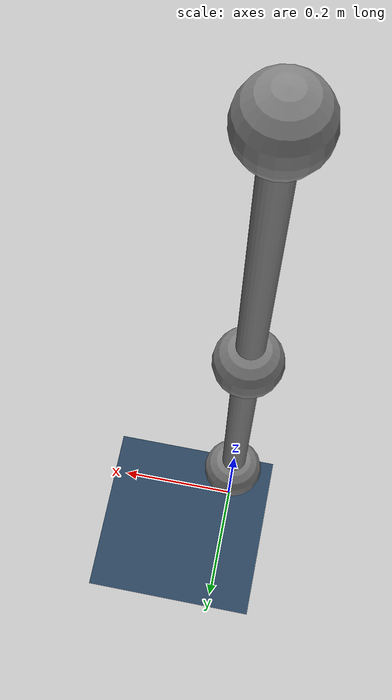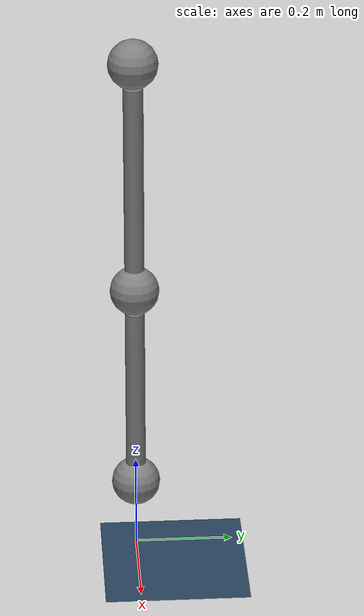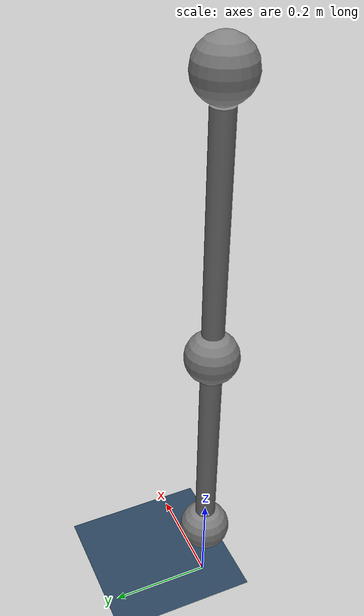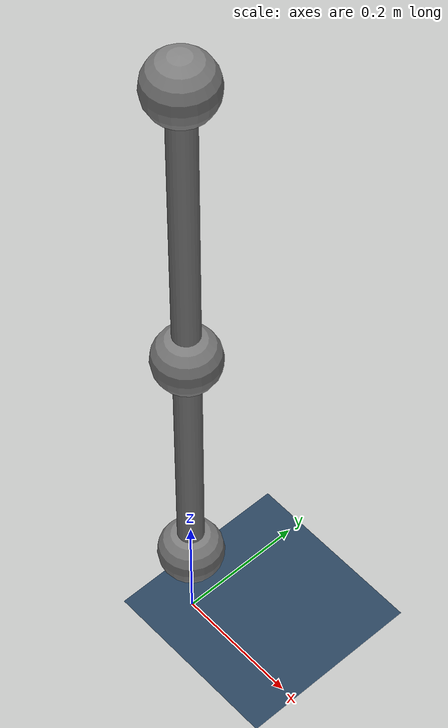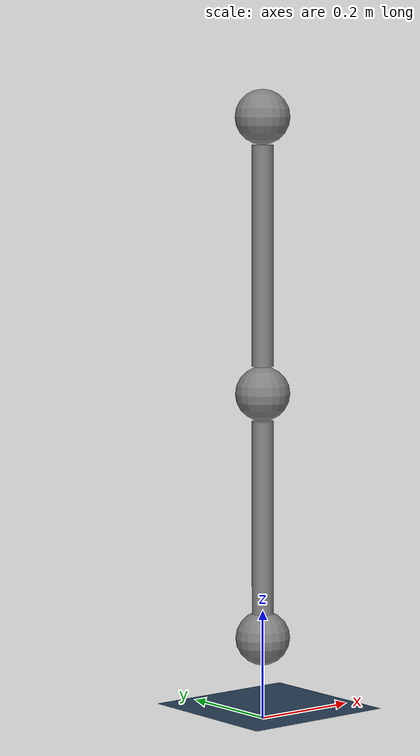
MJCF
<mujoco model="pendulum scene">

    <include file="double_pendulum.xml"/>

    <visual>
        <headlight diffuse="0.6 0.6 0.6" ambient="0.1 0.1 0.1" specular="0 0 0"/>
        <rgba haze="0.15 0.25 0.35 1"/>
        <global azimuth="-90" elevation="-20"/>
    </visual>

    <asset>
        <texture type="skybox" builtin="gradient" rgb1="0.3 0.5 0.7" rgb2="0 0 0" width="512" height="3072"/>
        <texture type="2d" name="groundplane" builtin="checker" mark="edge" rgb1="0.2 0.3 0.4" rgb2="0.1 0.2 0.3"
            markrgb="0.8 0.8 0.8" width="300" height="300"/>
        <material name="groundplane" texture="groundplane" texuniform="true" texrepeat="5 5" reflectance="0.2"/>
    </asset>

    <worldbody>
        <light pos="0 0 1.5" dir="0 0 -1" directional="true"/>
        <geom name="floor" size="0 0 0.05" type="plane" material="groundplane"/>
    </worldbody>

</mujoco>

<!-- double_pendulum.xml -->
<mujoco model="double_pendulum">
  <visual>
    <global offheight="1200"/>
  </visual>
  <compiler angle="radian"/>
  <statistic meansize="0.33033" extent="1.05" center="0 0 0.625"/>
  <worldbody>
    <light pos="0 0 .6"/>
    <camera name="closeup" pos="0 -1.0 2.0" xyaxes="1 0 0 0 1 2"/>
    <body name="base_link" pos="0 0 1.1">
      <joint name="j1" pos="0 0 0" axis="0 1 0" range="-3.14159 3.14159"/>
      <geom size="0.05"/>
      <geom size="0.02 0.2" pos="0 0 -0.25" type="cylinder"/>
      <body name="first_weight" pos="0 0 -0.5">
        <joint name="j2" pos="0 0 0" axis="0 1 0" range="-3.14159 3.14159"/>
        <geom size="0.05"/>
        <geom size="0.02 0.2" pos="0 0 -0.25" type="cylinder"/>
        <geom size="0.05" pos="0 0 -0.45"/>
      </body>
    </body>
  </worldbody>
  <actuator>
    <general name="motor1" joint="j1" />
    <general name="motor2" joint="j2" />
  </actuator>
</mujoco>
